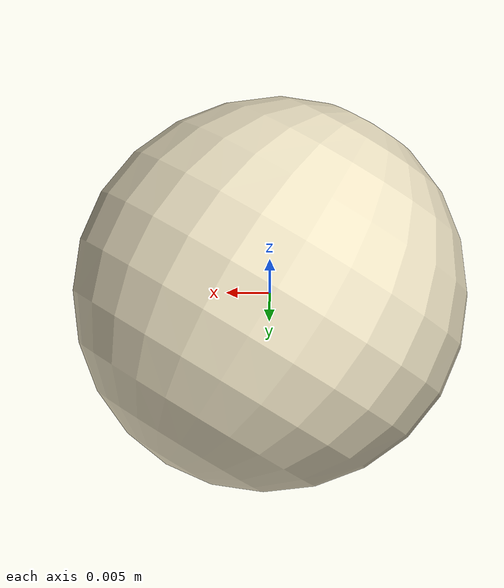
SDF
<?xml version="1.0"?>
<sdf version="1.7">
  <model name="cotton_pick_A_10">
    <static>false</static>
    <allow_auto_disable>false</allow_auto_disable>
    <link name="cotton_pick_A_10_link">
      <gravity>false</gravity>
      <self_collide>false</self_collide>
      <inertial>
        <mass>0.01200</mass>
        <inertia>
          <ixx>0.00000183</ixx>
          <iyy>0.00000183</iyy>
          <izz>0.00000183</izz>
          <ixy>0</ixy>
          <ixz>0</ixz>
          <iyz>0</iyz>
        </inertia>
      </inertial>
      <visual name="cotton_pick_A_10_visual">
        <geometry>
          <mesh>
            <uri>model://cotton_pick_A_10/meshes/cotton_pick_A_10.dae</uri>
          </mesh>
        </geometry>
      </visual>
      <collision name="cotton_pick_A_10_sphere_collision">
        <geometry>
          <sphere>
            <radius>0.01955</radius>
          </sphere>
        </geometry>
        <surface>
          <friction>
            <ode>
              <mu>1.6</mu>
              <mu2>1.6</mu2>
            </ode>
          </friction>
          <contact>
            <ode>
              <kp>8000</kp>
              <kd>80</kd>
            </ode>
          </contact>
        </surface>
      </collision>
    </link>
  </model>
</sdf>
